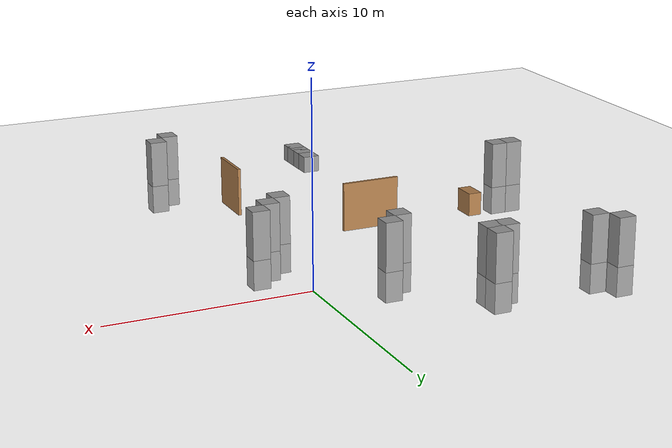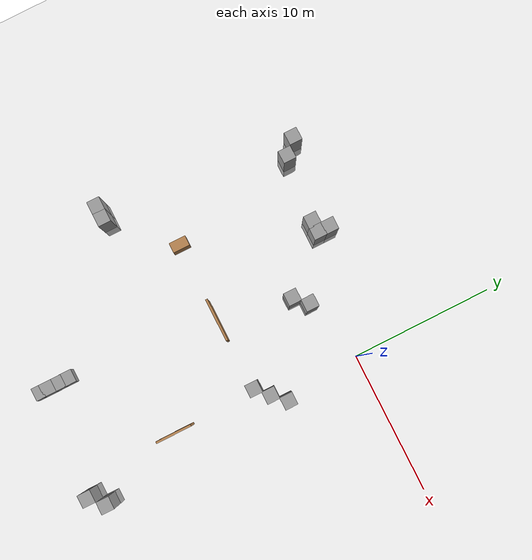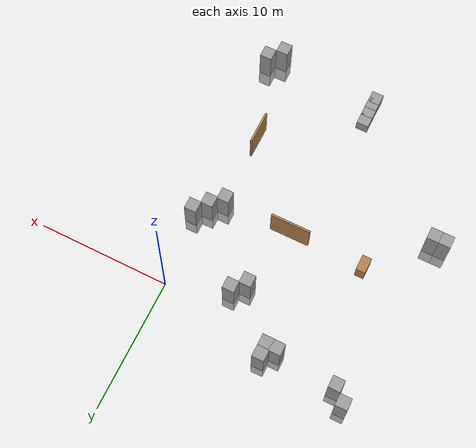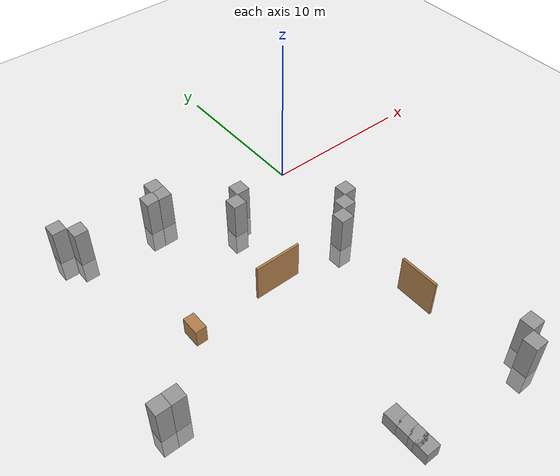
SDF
<sdf version="1.7">
 <world name="default">
  <model name="ground_plane">
   <static>1</static>
   <link name="link">
    <collision name="collision">
     <geometry><plane><normal>0 0 1</normal><size>100 100</size></plane></geometry>
     <surface><friction><ode><mu>100</mu><mu2>50</mu2></ode></friction></surface>
    </collision>
    <visual name="visual">
     <cast_shadows>0</cast_shadows>
     <geometry><plane><normal>0 0 1</normal><size>100 100</size></plane></geometry>
     <material>
      <script><uri>file://media/materials/scripts/gazebo.material</uri><name>Gazebo/Grey</name></script>
     </material>
    </visual>
   </link>
  </model>
  <model name="unit_box_clone">
   <link name="link">
    <inertial>
     <mass>1</mass>
     <inertia>
      <ixx>0.166667</ixx>
      <ixy>0</ixy>
      <ixz>0</ixz>
      <iyy>0.166667</iyy>
      <iyz>0</iyz>
      <izz>0.166667</izz>
     </inertia>
    </inertial>
    <visual name="visual">
     <geometry><box><size>0.9 0.9 0.9</size></box></geometry>
     <material>
      <script><name>Gazebo/Grey</name><uri>file://media/materials/scripts/gazebo.material</uri></script>
      <shader type="pixel"><normal_map>__default__</normal_map></shader>
      <ambient>0.3 0.3 0.3 1</ambient>
      <diffuse>0.7 0.7 0.7 1</diffuse>
      <specular>0.01 0.01 0.01 1</specular>
      <emissive>0 0 0 1</emissive>
     </material>
    </visual>
    <collision name="collision">
     <geometry><box><size>0.9 0.9 0.9</size></box></geometry>
     <surface>
      <friction>
       <ode><mu>1</mu><mu2>1</mu2><fdir1>0 0 0</fdir1><slip1>0</slip1><slip2>0</slip2></ode>
       <torsional>
        <coefficient>1</coefficient>
        <patch_radius>0</patch_radius>
        <surface_radius>0</surface_radius>
        <use_patch_radius>1</use_patch_radius>
        <ode><slip>0</slip></ode>
       </torsional>
      </friction>
      <bounce><restitution_coefficient>0</restitution_coefficient><threshold>1e+06</threshold></bounce>
      <contact>
       <collide_without_contact>0</collide_without_contact>
       <collide_without_contact_bitmask>1</collide_without_contact_bitmask>
       <collide_bitmask>1</collide_bitmask>
       <ode>
        <soft_cfm>0</soft_cfm>
        <soft_erp>0.2</soft_erp>
        <kp>1e+13</kp>
        <kd>1</kd>
        <max_vel>0.01</max_vel>
        <min_depth>0</min_depth>
       </ode>
       <bullet>
        <split_impulse>1</split_impulse>
        <split_impulse_penetration_threshold>-0.01</split_impulse_penetration_threshold>
        <soft_cfm>0</soft_cfm>
        <soft_erp>0.2</soft_erp>
        <kp>1e+13</kp>
        <kd>1</kd>
       </bullet>
      </contact>
     </surface>
    </collision>
   </link>
   <link name="link_clone_0_clone">
    <inertial>
     <mass>1</mass>
     <inertia>
      <ixx>0.166667</ixx>
      <ixy>0</ixy>
      <ixz>0</ixz>
      <iyy>0.166667</iyy>
      <iyz>0</iyz>
      <izz>0.166667</izz>
     </inertia>
    </inertial>
    <pose>0.001814 0.546546 0 0 -0 0</pose>
    <visual name="visual">
     <geometry><box><size>0.9 0.9 0.9</size></box></geometry>
     <material>
      <script><name>Gazebo/Grey</name><uri>file://media/materials/scripts/gazebo.material</uri></script>
      <shader type="pixel"><normal_map>__default__</normal_map></shader>
      <ambient>0.3 0.3 0.3 1</ambient>
      <diffuse>0.7 0.7 0.7 1</diffuse>
      <specular>0.01 0.01 0.01 1</specular>
      <emissive>0 0 0 1</emissive>
     </material>
    </visual>
    <collision name="collision">
     <geometry><box><size>0.9 0.9 0.9</size></box></geometry>
     <surface>
      <friction>
       <ode><mu>1</mu><mu2>1</mu2><fdir1>0 0 0</fdir1><slip1>0</slip1><slip2>0</slip2></ode>
       <torsional>
        <coefficient>1</coefficient>
        <patch_radius>0</patch_radius>
        <surface_radius>0</surface_radius>
        <use_patch_radius>1</use_patch_radius>
        <ode><slip>0</slip></ode>
       </torsional>
      </friction>
      <bounce><restitution_coefficient>0</restitution_coefficient><threshold>1e+06</threshold></bounce>
      <contact>
       <collide_without_contact>0</collide_without_contact>
       <collide_without_contact_bitmask>1</collide_without_contact_bitmask>
       <collide_bitmask>1</collide_bitmask>
       <ode>
        <soft_cfm>0</soft_cfm>
        <soft_erp>0.2</soft_erp>
        <kp>1e+13</kp>
        <kd>1</kd>
        <max_vel>0.01</max_vel>
        <min_depth>0</min_depth>
       </ode>
       <bullet>
        <split_impulse>1</split_impulse>
        <split_impulse_penetration_threshold>-0.01</split_impulse_penetration_threshold>
        <soft_cfm>0</soft_cfm>
        <soft_erp>0.2</soft_erp>
        <kp>1e+13</kp>
        <kd>1</kd>
       </bullet>
      </contact>
     </surface>
    </collision>
   </link>
   <link name="link_clone_0_clone_clone">
    <inertial>
     <mass>1</mass>
     <inertia>
      <ixx>0.166667</ixx>
      <ixy>0</ixy>
      <ixz>0</ixz>
      <iyy>0.166667</iyy>
      <iyz>0</iyz>
      <izz>0.166667</izz>
     </inertia>
    </inertial>
    <pose>0.000695 1.26691 0 0 -0 0</pose>
    <visual name="visual">
     <geometry><box><size>0.9 0.9 0.9</size></box></geometry>
     <material>
      <script><name>Gazebo/Grey</name><uri>file://media/materials/scripts/gazebo.material</uri></script>
      <shader type="pixel"><normal_map>__default__</normal_map></shader>
      <ambient>0.3 0.3 0.3 1</ambient>
      <diffuse>0.7 0.7 0.7 1</diffuse>
      <specular>0.01 0.01 0.01 1</specular>
      <emissive>0 0 0 1</emissive>
     </material>
    </visual>
    <collision name="collision">
     <geometry><box><size>0.9 0.9 0.9</size></box></geometry>
     <surface>
      <friction>
       <ode><mu>1</mu><mu2>1</mu2><fdir1>0 0 0</fdir1><slip1>0</slip1><slip2>0</slip2></ode>
       <torsional>
        <coefficient>1</coefficient>
        <patch_radius>0</patch_radius>
        <surface_radius>0</surface_radius>
        <use_patch_radius>1</use_patch_radius>
        <ode><slip>0</slip></ode>
       </torsional>
      </friction>
      <bounce><restitution_coefficient>0</restitution_coefficient><threshold>1e+06</threshold></bounce>
      <contact>
       <collide_without_contact>0</collide_without_contact>
       <collide_without_contact_bitmask>1</collide_without_contact_bitmask>
       <collide_bitmask>1</collide_bitmask>
       <ode>
        <soft_cfm>0</soft_cfm>
        <soft_erp>0.2</soft_erp>
        <kp>1e+13</kp>
        <kd>1</kd>
        <max_vel>0.01</max_vel>
        <min_depth>0</min_depth>
       </ode>
       <bullet>
        <split_impulse>1</split_impulse>
        <split_impulse_penetration_threshold>-0.01</split_impulse_penetration_threshold>
        <soft_cfm>0</soft_cfm>
        <soft_erp>0.2</soft_erp>
        <kp>1e+13</kp>
        <kd>1</kd>
       </bullet>
      </contact>
     </surface>
    </collision>
   </link>
   <link name="link_clone_0_clone_clone_0">
    <inertial>
     <mass>1</mass>
     <inertia>
      <ixx>0.166667</ixx>
      <ixy>0</ixy>
      <ixz>0</ixz>
      <iyy>0.166667</iyy>
      <iyz>0</iyz>
      <izz>0.166667</izz>
     </inertia>
    </inertial>
    <pose>-9.13666 8.99649 0 0 -0 0</pose>
    <visual name="visual">
     <geometry><box><size>0.9 0.9 4</size></box></geometry>
     <material>
      <script><name>Gazebo/Grey</name><uri>file://media/materials/scripts/gazebo.material</uri></script>
      <shader type="pixel"><normal_map>__default__</normal_map></shader>
      <ambient>0.3 0.3 0.3 1</ambient>
      <diffuse>0.7 0.7 0.7 1</diffuse>
      <specular>0.01 0.01 0.01 1</specular>
      <emissive>0 0 0 1</emissive>
     </material>
    </visual>
    <collision name="collision">
     <geometry><box><size>0.9 0.9 4</size></box></geometry>
     <surface>
      <friction>
       <ode><mu>1</mu><mu2>1</mu2><fdir1>0 0 0</fdir1><slip1>0</slip1><slip2>0</slip2></ode>
       <torsional>
        <coefficient>1</coefficient>
        <patch_radius>0</patch_radius>
        <surface_radius>0</surface_radius>
        <use_patch_radius>1</use_patch_radius>
        <ode><slip>0</slip></ode>
       </torsional>
      </friction>
      <bounce><restitution_coefficient>0</restitution_coefficient><threshold>1e+06</threshold></bounce>
      <contact>
       <collide_without_contact>0</collide_without_contact>
       <collide_without_contact_bitmask>1</collide_without_contact_bitmask>
       <collide_bitmask>1</collide_bitmask>
       <ode>
        <soft_cfm>0</soft_cfm>
        <soft_erp>0.2</soft_erp>
        <kp>1e+13</kp>
        <kd>1</kd>
        <max_vel>0.01</max_vel>
        <min_depth>0</min_depth>
       </ode>
       <bullet>
        <split_impulse>1</split_impulse>
        <split_impulse_penetration_threshold>-0.01</split_impulse_penetration_threshold>
        <soft_cfm>0</soft_cfm>
        <soft_erp>0.2</soft_erp>
        <kp>1e+13</kp>
        <kd>1</kd>
       </bullet>
      </contact>
     </surface>
    </collision>
   </link>
   <link name="link_clone_0_clone_clone_1">
    <inertial>
     <mass>1</mass>
     <inertia>
      <ixx>0.166667</ixx>
      <ixy>0</ixy>
      <ixz>0</ixz>
      <iyy>0.166667</iyy>
      <iyz>0</iyz>
      <izz>0.166667</izz>
     </inertia>
    </inertial>
    <pose>-8.25334 8.99525 0 0 -0 0</pose>
    <visual name="visual">
     <geometry><box><size>0.9 0.9 4</size></box></geometry>
     <material>
      <script><name>Gazebo/Grey</name><uri>file://media/materials/scripts/gazebo.material</uri></script>
      <shader type="pixel"><normal_map>__default__</normal_map></shader>
      <ambient>0.3 0.3 0.3 1</ambient>
      <diffuse>0.7 0.7 0.7 1</diffuse>
      <specular>0.01 0.01 0.01 1</specular>
      <emissive>0 0 0 1</emissive>
     </material>
    </visual>
    <collision name="collision">
     <geometry><box><size>0.9 0.9 4</size></box></geometry>
     <surface>
      <friction>
       <ode><mu>1</mu><mu2>1</mu2><fdir1>0 0 0</fdir1><slip1>0</slip1><slip2>0</slip2></ode>
       <torsional>
        <coefficient>1</coefficient>
        <patch_radius>0</patch_radius>
        <surface_radius>0</surface_radius>
        <use_patch_radius>1</use_patch_radius>
        <ode><slip>0</slip></ode>
       </torsional>
      </friction>
      <bounce><restitution_coefficient>0</restitution_coefficient><threshold>1e+06</threshold></bounce>
      <contact>
       <collide_without_contact>0</collide_without_contact>
       <collide_without_contact_bitmask>1</collide_without_contact_bitmask>
       <collide_bitmask>1</collide_bitmask>
       <ode>
        <soft_cfm>0</soft_cfm>
        <soft_erp>0.2</soft_erp>
        <kp>1e+13</kp>
        <kd>1</kd>
        <max_vel>0.01</max_vel>
        <min_depth>0</min_depth>
       </ode>
       <bullet>
        <split_impulse>1</split_impulse>
        <split_impulse_penetration_threshold>-0.01</split_impulse_penetration_threshold>
        <soft_cfm>0</soft_cfm>
        <soft_erp>0.2</soft_erp>
        <kp>1e+13</kp>
        <kd>1</kd>
       </bullet>
      </contact>
     </surface>
    </collision>
   </link>
   <link name="link_clone_0_clone_clone_3_clone_2_clone_12">
    <inertial>
     <mass>1</mass>
     <inertia>
      <ixx>0.166667</ixx>
      <ixy>0</ixy>
      <ixz>0</ixz>
      <iyy>0.166667</iyy>
      <iyz>0</iyz>
      <izz>0.166667</izz>
     </inertia>
    </inertial>
    <pose>-1.03565 22.0898 0 0 -0 0</pose>
    <visual name="visual">
     <geometry><box><size>0.9 0.9 4</size></box></geometry>
     <material>
      <script><name>Gazebo/Grey</name><uri>file://media/materials/scripts/gazebo.material</uri></script>
      <shader type="pixel"><normal_map>__default__</normal_map></shader>
      <ambient>0.3 0.3 0.3 1</ambient>
      <diffuse>0.7 0.7 0.7 1</diffuse>
      <specular>0.01 0.01 0.01 1</specular>
      <emissive>0 0 0 1</emissive>
     </material>
    </visual>
    <collision name="collision">
     <geometry><box><size>0.9 0.9 4</size></box></geometry>
     <surface>
      <friction>
       <ode><mu>1</mu><mu2>1</mu2><fdir1>0 0 0</fdir1><slip1>0</slip1><slip2>0</slip2></ode>
       <torsional>
        <coefficient>1</coefficient>
        <patch_radius>0</patch_radius>
        <surface_radius>0</surface_radius>
        <use_patch_radius>1</use_patch_radius>
        <ode><slip>0</slip></ode>
       </torsional>
      </friction>
      <bounce><restitution_coefficient>0</restitution_coefficient><threshold>1e+06</threshold></bounce>
      <contact>
       <collide_without_contact>0</collide_without_contact>
       <collide_without_contact_bitmask>1</collide_without_contact_bitmask>
       <collide_bitmask>1</collide_bitmask>
       <ode>
        <soft_cfm>0</soft_cfm>
        <soft_erp>0.2</soft_erp>
        <kp>1e+13</kp>
        <kd>1</kd>
        <max_vel>0.01</max_vel>
        <min_depth>0</min_depth>
       </ode>
       <bullet>
        <split_impulse>1</split_impulse>
        <split_impulse_penetration_threshold>-0.01</split_impulse_penetration_threshold>
        <soft_cfm>0</soft_cfm>
        <soft_erp>0.2</soft_erp>
        <kp>1e+13</kp>
        <kd>1</kd>
       </bullet>
      </contact>
     </surface>
    </collision>
   </link>
   <link name="link_clone_0_clone_clone_3_clone_2_clone_13">
    <inertial>
     <mass>1</mass>
     <inertia>
      <ixx>0.166667</ixx>
      <ixy>0</ixy>
      <ixz>0</ixz>
      <iyy>0.166667</iyy>
      <iyz>0</iyz>
      <izz>0.166667</izz>
     </inertia>
    </inertial>
    <pose>-1.04307 21.2327 0 0 -0 0</pose>
    <visual name="visual">
     <geometry><box><size>0.9 0.9 4</size></box></geometry>
     <material>
      <script><name>Gazebo/Grey</name><uri>file://media/materials/scripts/gazebo.material</uri></script>
      <shader type="pixel"><normal_map>__default__</normal_map></shader>
      <ambient>0.3 0.3 0.3 1</ambient>
      <diffuse>0.7 0.7 0.7 1</diffuse>
      <specular>0.01 0.01 0.01 1</specular>
      <emissive>0 0 0 1</emissive>
     </material>
    </visual>
    <collision name="collision">
     <geometry><box><size>0.9 0.9 4</size></box></geometry>
     <surface>
      <friction>
       <ode><mu>1</mu><mu2>1</mu2><fdir1>0 0 0</fdir1><slip1>0</slip1><slip2>0</slip2></ode>
       <torsional>
        <coefficient>1</coefficient>
        <patch_radius>0</patch_radius>
        <surface_radius>0</surface_radius>
        <use_patch_radius>1</use_patch_radius>
        <ode><slip>0</slip></ode>
       </torsional>
      </friction>
      <bounce><restitution_coefficient>0</restitution_coefficient><threshold>1e+06</threshold></bounce>
      <contact>
       <collide_without_contact>0</collide_without_contact>
       <collide_without_contact_bitmask>1</collide_without_contact_bitmask>
       <collide_bitmask>1</collide_bitmask>
       <ode>
        <soft_cfm>0</soft_cfm>
        <soft_erp>0.2</soft_erp>
        <kp>1e+13</kp>
        <kd>1</kd>
        <max_vel>0.01</max_vel>
        <min_depth>0</min_depth>
       </ode>
       <bullet>
        <split_impulse>1</split_impulse>
        <split_impulse_penetration_threshold>-0.01</split_impulse_penetration_threshold>
        <soft_cfm>0</soft_cfm>
        <soft_erp>0.2</soft_erp>
        <kp>1e+13</kp>
        <kd>1</kd>
       </bullet>
      </contact>
     </surface>
    </collision>
   </link>
   <link name="link_clone_0_clone_clone_3_clone_2_clone_14">
    <inertial>
     <mass>1</mass>
     <inertia>
      <ixx>0.166667</ixx>
      <ixy>0</ixy>
      <ixz>0</ixz>
      <iyy>0.166667</iyy>
      <iyz>0</iyz>
      <izz>0.166667</izz>
     </inertia>
    </inertial>
    <pose>-1.86101 21.2404 0 0 -0 0</pose>
    <visual name="visual">
     <geometry><box><size>0.9 0.9 4</size></box></geometry>
     <material>
      <script><name>Gazebo/Grey</name><uri>file://media/materials/scripts/gazebo.material</uri></script>
      <shader type="pixel"><normal_map>__default__</normal_map></shader>
      <ambient>0.3 0.3 0.3 1</ambient>
      <diffuse>0.7 0.7 0.7 1</diffuse>
      <specular>0.01 0.01 0.01 1</specular>
      <emissive>0 0 0 1</emissive>
     </material>
    </visual>
    <collision name="collision">
     <geometry><box><size>0.9 0.9 4</size></box></geometry>
     <surface>
      <friction>
       <ode><mu>1</mu><mu2>1</mu2><fdir1>0 0 0</fdir1><slip1>0</slip1><slip2>0</slip2></ode>
       <torsional>
        <coefficient>1</coefficient>
        <patch_radius>0</patch_radius>
        <surface_radius>0</surface_radius>
        <use_patch_radius>1</use_patch_radius>
        <ode><slip>0</slip></ode>
       </torsional>
      </friction>
      <bounce><restitution_coefficient>0</restitution_coefficient><threshold>1e+06</threshold></bounce>
      <contact>
       <collide_without_contact>0</collide_without_contact>
       <collide_without_contact_bitmask>1</collide_without_contact_bitmask>
       <collide_bitmask>1</collide_bitmask>
       <ode>
        <soft_cfm>0</soft_cfm>
        <soft_erp>0.2</soft_erp>
        <kp>1e+13</kp>
        <kd>1</kd>
        <max_vel>0.01</max_vel>
        <min_depth>0</min_depth>
       </ode>
       <bullet>
        <split_impulse>1</split_impulse>
        <split_impulse_penetration_threshold>-0.01</split_impulse_penetration_threshold>
        <soft_cfm>0</soft_cfm>
        <soft_erp>0.2</soft_erp>
        <kp>1e+13</kp>
        <kd>1</kd>
       </bullet>
      </contact>
     </surface>
    </collision>
   </link>
   <link name="link_clone_0_clone_clone_3_clone_2_clone_30">
    <inertial>
     <mass>1</mass>
     <inertia>
      <ixx>0.166667</ixx>
      <ixy>0</ixy>
      <ixz>0</ixz>
      <iyy>0.166667</iyy>
      <iyz>0</iyz>
      <izz>0.166667</izz>
     </inertia>
    </inertial>
    <pose>8.60253 0.907256 0 0 -0 0</pose>
    <visual name="visual">
     <geometry><box><size>0.9 0.9 4</size></box></geometry>
     <material>
      <script><name>Gazebo/Grey</name><uri>file://media/materials/scripts/gazebo.material</uri></script>
      <shader type="pixel"><normal_map>__default__</normal_map></shader>
      <ambient>0.3 0.3 0.3 1</ambient>
      <diffuse>0.7 0.7 0.7 1</diffuse>
      <specular>0.01 0.01 0.01 1</specular>
      <emissive>0 0 0 1</emissive>
     </material>
    </visual>
    <collision name="collision">
     <geometry><box><size>0.9 0.9 4</size></box></geometry>
     <surface>
      <friction>
       <ode><mu>1</mu><mu2>1</mu2><fdir1>0 0 0</fdir1><slip1>0</slip1><slip2>0</slip2></ode>
       <torsional>
        <coefficient>1</coefficient>
        <patch_radius>0</patch_radius>
        <surface_radius>0</surface_radius>
        <use_patch_radius>1</use_patch_radius>
        <ode><slip>0</slip></ode>
       </torsional>
      </friction>
      <bounce><restitution_coefficient>0</restitution_coefficient><threshold>1e+06</threshold></bounce>
      <contact>
       <collide_without_contact>0</collide_without_contact>
       <collide_without_contact_bitmask>1</collide_without_contact_bitmask>
       <collide_bitmask>1</collide_bitmask>
       <ode>
        <soft_cfm>0</soft_cfm>
        <soft_erp>0.2</soft_erp>
        <kp>1e+13</kp>
        <kd>1</kd>
        <max_vel>0.01</max_vel>
        <min_depth>0</min_depth>
       </ode>
       <bullet>
        <split_impulse>1</split_impulse>
        <split_impulse_penetration_threshold>-0.01</split_impulse_penetration_threshold>
        <soft_cfm>0</soft_cfm>
        <soft_erp>0.2</soft_erp>
        <kp>1e+13</kp>
        <kd>1</kd>
       </bullet>
      </contact>
     </surface>
    </collision>
   </link>
   <link name="link_clone_0_clone_clone_3_clone_2_clone_31">
    <inertial>
     <mass>1</mass>
     <inertia>
      <ixx>0.166667</ixx>
      <ixy>0</ixy>
      <ixz>0</ixz>
      <iyy>0.166667</iyy>
      <iyz>0</iyz>
      <izz>0.166667</izz>
     </inertia>
    </inertial>
    <pose>7.67945 0.009107 0 0 -0 0</pose>
    <visual name="visual">
     <geometry><box><size>0.9 0.9 4</size></box></geometry>
     <material>
      <script><name>Gazebo/Grey</name><uri>file://media/materials/scripts/gazebo.material</uri></script>
      <shader type="pixel"><normal_map>__default__</normal_map></shader>
      <ambient>0.3 0.3 0.3 1</ambient>
      <diffuse>0.7 0.7 0.7 1</diffuse>
      <specular>0.01 0.01 0.01 1</specular>
      <emissive>0 0 0 1</emissive>
     </material>
    </visual>
    <collision name="collision">
     <geometry><box><size>0.9 0.9 4</size></box></geometry>
     <surface>
      <friction>
       <ode><mu>1</mu><mu2>1</mu2><fdir1>0 0 0</fdir1><slip1>0</slip1><slip2>0</slip2></ode>
       <torsional>
        <coefficient>1</coefficient>
        <patch_radius>0</patch_radius>
        <surface_radius>0</surface_radius>
        <use_patch_radius>1</use_patch_radius>
        <ode><slip>0</slip></ode>
       </torsional>
      </friction>
      <bounce><restitution_coefficient>0</restitution_coefficient><threshold>1e+06</threshold></bounce>
      <contact>
       <collide_without_contact>0</collide_without_contact>
       <collide_without_contact_bitmask>1</collide_without_contact_bitmask>
       <collide_bitmask>1</collide_bitmask>
       <ode>
        <soft_cfm>0</soft_cfm>
        <soft_erp>0.2</soft_erp>
        <kp>1e+13</kp>
        <kd>1</kd>
        <max_vel>0.01</max_vel>
        <min_depth>0</min_depth>
       </ode>
       <bullet>
        <split_impulse>1</split_impulse>
        <split_impulse_penetration_threshold>-0.01</split_impulse_penetration_threshold>
        <soft_cfm>0</soft_cfm>
        <soft_erp>0.2</soft_erp>
        <kp>1e+13</kp>
        <kd>1</kd>
       </bullet>
      </contact>
     </surface>
    </collision>
   </link>
   <link name="link_clone_0_clone_clone_3_clone_2_clone_50">
    <inertial>
     <mass>1</mass>
     <inertia>
      <ixx>0.166667</ixx>
      <ixy>0</ixy>
      <ixz>0</ixz>
      <iyy>0.166667</iyy>
      <iyz>0</iyz>
      <izz>0.166667</izz>
     </inertia>
    </inertial>
    <pose>2.0531 17.7761 0 0 -0 0</pose>
    <visual name="visual">
     <geometry><box><size>0.9 0.9 4</size></box></geometry>
     <material>
      <script><name>Gazebo/Grey</name><uri>file://media/materials/scripts/gazebo.material</uri></script>
      <shader type="pixel"><normal_map>__default__</normal_map></shader>
      <ambient>0.3 0.3 0.3 1</ambient>
      <diffuse>0.7 0.7 0.7 1</diffuse>
      <specular>0.01 0.01 0.01 1</specular>
      <emissive>0 0 0 1</emissive>
     </material>
    </visual>
    <collision name="collision">
     <geometry><box><size>0.9 0.9 4</size></box></geometry>
     <surface>
      <friction>
       <ode><mu>1</mu><mu2>1</mu2><fdir1>0 0 0</fdir1><slip1>0</slip1><slip2>0</slip2></ode>
       <torsional>
        <coefficient>1</coefficient>
        <patch_radius>0</patch_radius>
        <surface_radius>0</surface_radius>
        <use_patch_radius>1</use_patch_radius>
        <ode><slip>0</slip></ode>
       </torsional>
      </friction>
      <bounce><restitution_coefficient>0</restitution_coefficient><threshold>1e+06</threshold></bounce>
      <contact>
       <collide_without_contact>0</collide_without_contact>
       <collide_without_contact_bitmask>1</collide_without_contact_bitmask>
       <collide_bitmask>1</collide_bitmask>
       <ode>
        <soft_cfm>0</soft_cfm>
        <soft_erp>0.2</soft_erp>
        <kp>1e+13</kp>
        <kd>1</kd>
        <max_vel>0.01</max_vel>
        <min_depth>0</min_depth>
       </ode>
       <bullet>
        <split_impulse>1</split_impulse>
        <split_impulse_penetration_threshold>-0.01</split_impulse_penetration_threshold>
        <soft_cfm>0</soft_cfm>
        <soft_erp>0.2</soft_erp>
        <kp>1e+13</kp>
        <kd>1</kd>
       </bullet>
      </contact>
     </surface>
    </collision>
   </link>
   <link name="link_clone_0_clone_clone_3_clone_2_clone_51">
    <inertial>
     <mass>1</mass>
     <inertia>
      <ixx>0.166667</ixx>
      <ixy>0</ixy>
      <ixz>0</ixz>
      <iyy>0.166667</iyy>
      <iyz>0</iyz>
      <izz>0.166667</izz>
     </inertia>
    </inertial>
    <pose>2.91295 18.6319 0 0 -0 0</pose>
    <visual name="visual">
     <geometry><box><size>0.9 0.9 4</size></box></geometry>
     <material>
      <script><name>Gazebo/Grey</name><uri>file://media/materials/scripts/gazebo.material</uri></script>
      <shader type="pixel"><normal_map>__default__</normal_map></shader>
      <ambient>0.3 0.3 0.3 1</ambient>
      <diffuse>0.7 0.7 0.7 1</diffuse>
      <specular>0.01 0.01 0.01 1</specular>
      <emissive>0 0 0 1</emissive>
     </material>
    </visual>
    <collision name="collision">
     <geometry><box><size>0.9 0.9 4</size></box></geometry>
     <surface>
      <friction>
       <ode><mu>1</mu><mu2>1</mu2><fdir1>0 0 0</fdir1><slip1>0</slip1><slip2>0</slip2></ode>
       <torsional>
        <coefficient>1</coefficient>
        <patch_radius>0</patch_radius>
        <surface_radius>0</surface_radius>
        <use_patch_radius>1</use_patch_radius>
        <ode><slip>0</slip></ode>
       </torsional>
      </friction>
      <bounce><restitution_coefficient>0</restitution_coefficient><threshold>1e+06</threshold></bounce>
      <contact>
       <collide_without_contact>0</collide_without_contact>
       <collide_without_contact_bitmask>1</collide_without_contact_bitmask>
       <collide_bitmask>1</collide_bitmask>
       <ode>
        <soft_cfm>0</soft_cfm>
        <soft_erp>0.2</soft_erp>
        <kp>1e+13</kp>
        <kd>1</kd>
        <max_vel>0.01</max_vel>
        <min_depth>0</min_depth>
       </ode>
       <bullet>
        <split_impulse>1</split_impulse>
        <split_impulse_penetration_threshold>-0.01</split_impulse_penetration_threshold>
        <soft_cfm>0</soft_cfm>
        <soft_erp>0.2</soft_erp>
        <kp>1e+13</kp>
        <kd>1</kd>
       </bullet>
      </contact>
     </surface>
    </collision>
   </link>
   <link name="link_clone_0_clone_clone_3_clone_2_clone_54">
    <inertial>
     <mass>1</mass>
     <inertia>
      <ixx>0.166667</ixx>
      <ixy>0</ixy>
      <ixz>0</ixz>
      <iyy>0.166667</iyy>
      <iyz>0</iyz>
      <izz>0.166667</izz>
     </inertia>
    </inertial>
    <pose>6.24208 12.8125 0 0 -0 0</pose>
    <visual name="visual">
     <geometry><box><size>0.9 0.9 4</size></box></geometry>
     <material>
      <script><name>Gazebo/Grey</name><uri>file://media/materials/scripts/gazebo.material</uri></script>
      <shader type="pixel"><normal_map>__default__</normal_map></shader>
      <ambient>0.3 0.3 0.3 1</ambient>
      <diffuse>0.7 0.7 0.7 1</diffuse>
      <specular>0.01 0.01 0.01 1</specular>
      <emissive>0 0 0 1</emissive>
     </material>
    </visual>
    <collision name="collision">
     <geometry><box><size>0.9 0.9 4</size></box></geometry>
     <surface>
      <friction>
       <ode><mu>1</mu><mu2>1</mu2><fdir1>0 0 0</fdir1><slip1>0</slip1><slip2>0</slip2></ode>
       <torsional>
        <coefficient>1</coefficient>
        <patch_radius>0</patch_radius>
        <surface_radius>0</surface_radius>
        <use_patch_radius>1</use_patch_radius>
        <ode><slip>0</slip></ode>
       </torsional>
      </friction>
      <bounce><restitution_coefficient>0</restitution_coefficient><threshold>1e+06</threshold></bounce>
      <contact>
       <collide_without_contact>0</collide_without_contact>
       <collide_without_contact_bitmask>1</collide_without_contact_bitmask>
       <collide_bitmask>1</collide_bitmask>
       <ode>
        <soft_cfm>0</soft_cfm>
        <soft_erp>0.2</soft_erp>
        <kp>1e+13</kp>
        <kd>1</kd>
        <max_vel>0.01</max_vel>
        <min_depth>0</min_depth>
       </ode>
       <bullet>
        <split_impulse>1</split_impulse>
        <split_impulse_penetration_threshold>-0.01</split_impulse_penetration_threshold>
        <soft_cfm>0</soft_cfm>
        <soft_erp>0.2</soft_erp>
        <kp>1e+13</kp>
        <kd>1</kd>
       </bullet>
      </contact>
     </surface>
    </collision>
   </link>
   <link name="link_clone_0_clone_clone_3_clone_2_clone_55">
    <inertial>
     <mass>1</mass>
     <inertia>
      <ixx>0.166667</ixx>
      <ixy>0</ixy>
      <ixz>0</ixz>
      <iyy>0.166667</iyy>
      <iyz>0</iyz>
      <izz>0.166667</izz>
     </inertia>
    </inertial>
    <pose>7.11895 13.6193 0 0 -0 0</pose>
    <visual name="visual">
     <geometry><box><size>0.9 0.9 4</size></box></geometry>
     <material>
      <script><name>Gazebo/Grey</name><uri>file://media/materials/scripts/gazebo.material</uri></script>
      <shader type="pixel"><normal_map>__default__</normal_map></shader>
      <ambient>0.3 0.3 0.3 1</ambient>
      <diffuse>0.7 0.7 0.7 1</diffuse>
      <specular>0.01 0.01 0.01 1</specular>
      <emissive>0 0 0 1</emissive>
     </material>
    </visual>
    <collision name="collision">
     <geometry><box><size>0.9 0.9 4</size></box></geometry>
     <surface>
      <friction>
       <ode><mu>1</mu><mu2>1</mu2><fdir1>0 0 0</fdir1><slip1>0</slip1><slip2>0</slip2></ode>
       <torsional>
        <coefficient>1</coefficient>
        <patch_radius>0</patch_radius>
        <surface_radius>0</surface_radius>
        <use_patch_radius>1</use_patch_radius>
        <ode><slip>0</slip></ode>
       </torsional>
      </friction>
      <bounce><restitution_coefficient>0</restitution_coefficient><threshold>1e+06</threshold></bounce>
      <contact>
       <collide_without_contact>0</collide_without_contact>
       <collide_without_contact_bitmask>1</collide_without_contact_bitmask>
       <collide_bitmask>1</collide_bitmask>
       <ode>
        <soft_cfm>0</soft_cfm>
        <soft_erp>0.2</soft_erp>
        <kp>1e+13</kp>
        <kd>1</kd>
        <max_vel>0.01</max_vel>
        <min_depth>0</min_depth>
       </ode>
       <bullet>
        <split_impulse>1</split_impulse>
        <split_impulse_penetration_threshold>-0.01</split_impulse_penetration_threshold>
        <soft_cfm>0</soft_cfm>
        <soft_erp>0.2</soft_erp>
        <kp>1e+13</kp>
        <kd>1</kd>
       </bullet>
      </contact>
     </surface>
    </collision>
   </link>
   <link name="link_clone_0_clone_clone_3_clone_2_clone_56">
    <inertial>
     <mass>1</mass>
     <inertia>
      <ixx>0.166667</ixx>
      <ixy>0</ixy>
      <ixz>0</ixz>
      <iyy>0.166667</iyy>
      <iyz>0</iyz>
      <izz>0.166667</izz>
     </inertia>
    </inertial>
    <pose>7.97703 14.495 0 0 -0 0</pose>
    <visual name="visual">
     <geometry><box><size>0.9 0.9 4</size></box></geometry>
     <material>
      <script><name>Gazebo/Grey</name><uri>file://media/materials/scripts/gazebo.material</uri></script>
      <shader type="pixel"><normal_map>__default__</normal_map></shader>
      <ambient>0.3 0.3 0.3 1</ambient>
      <diffuse>0.7 0.7 0.7 1</diffuse>
      <specular>0.01 0.01 0.01 1</specular>
      <emissive>0 0 0 1</emissive>
     </material>
    </visual>
    <collision name="collision">
     <geometry><box><size>0.9 0.9 4</size></box></geometry>
     <surface>
      <friction>
       <ode><mu>1</mu><mu2>1</mu2><fdir1>0 0 0</fdir1><slip1>0</slip1><slip2>0</slip2></ode>
       <torsional>
        <coefficient>1</coefficient>
        <patch_radius>0</patch_radius>
        <surface_radius>0</surface_radius>
        <use_patch_radius>1</use_patch_radius>
        <ode><slip>0</slip></ode>
       </torsional>
      </friction>
      <bounce><restitution_coefficient>0</restitution_coefficient><threshold>1e+06</threshold></bounce>
      <contact>
       <collide_without_contact>0</collide_without_contact>
       <collide_without_contact_bitmask>1</collide_without_contact_bitmask>
       <collide_bitmask>1</collide_bitmask>
       <ode>
        <soft_cfm>0</soft_cfm>
        <soft_erp>0.2</soft_erp>
        <kp>1e+13</kp>
        <kd>1</kd>
        <max_vel>0.01</max_vel>
        <min_depth>0</min_depth>
       </ode>
       <bullet>
        <split_impulse>1</split_impulse>
        <split_impulse_penetration_threshold>-0.01</split_impulse_penetration_threshold>
        <soft_cfm>0</soft_cfm>
        <soft_erp>0.2</soft_erp>
        <kp>1e+13</kp>
        <kd>1</kd>
       </bullet>
      </contact>
     </surface>
    </collision>
   </link>
   <link name="link_clone_0_clone_clone_3_clone_2_clone_7">
    <inertial>
     <mass>1</mass>
     <inertia>
      <ixx>0.166667</ixx>
      <ixy>0</ixy>
      <ixz>0</ixz>
      <iyy>0.166667</iyy>
      <iyz>0</iyz>
      <izz>0.166667</izz>
     </inertia>
    </inertial>
    <pose>-7.39653 22.6366 0 0 -0 0</pose>
    <visual name="visual">
     <geometry><box><size>0.9 0.9 4</size></box></geometry>
     <material>
      <script><name>Gazebo/Grey</name><uri>file://media/materials/scripts/gazebo.material</uri></script>
      <shader type="pixel"><normal_map>__default__</normal_map></shader>
      <ambient>0.3 0.3 0.3 1</ambient>
      <diffuse>0.7 0.7 0.7 1</diffuse>
      <specular>0.01 0.01 0.01 1</specular>
      <emissive>0 0 0 1</emissive>
     </material>
    </visual>
    <collision name="collision">
     <geometry><box><size>0.9 0.9 4</size></box></geometry>
     <surface>
      <friction>
       <ode><mu>1</mu><mu2>1</mu2><fdir1>0 0 0</fdir1><slip1>0</slip1><slip2>0</slip2></ode>
       <torsional>
        <coefficient>1</coefficient>
        <patch_radius>0</patch_radius>
        <surface_radius>0</surface_radius>
        <use_patch_radius>1</use_patch_radius>
        <ode><slip>0</slip></ode>
       </torsional>
      </friction>
      <bounce><restitution_coefficient>0</restitution_coefficient><threshold>1e+06</threshold></bounce>
      <contact>
       <collide_without_contact>0</collide_without_contact>
       <collide_without_contact_bitmask>1</collide_without_contact_bitmask>
       <collide_bitmask>1</collide_bitmask>
       <ode>
        <soft_cfm>0</soft_cfm>
        <soft_erp>0.2</soft_erp>
        <kp>1e+13</kp>
        <kd>1</kd>
        <max_vel>0.01</max_vel>
        <min_depth>0</min_depth>
       </ode>
       <bullet>
        <split_impulse>1</split_impulse>
        <split_impulse_penetration_threshold>-0.01</split_impulse_penetration_threshold>
        <soft_cfm>0</soft_cfm>
        <soft_erp>0.2</soft_erp>
        <kp>1e+13</kp>
        <kd>1</kd>
       </bullet>
      </contact>
     </surface>
    </collision>
   </link>
   <link name="link_clone_0_clone_clone_3_clone_2_clone_8">
    <inertial>
     <mass>1</mass>
     <inertia>
      <ixx>0.166667</ixx>
      <ixy>0</ixy>
      <ixz>0</ixz>
      <iyy>0.166667</iyy>
      <iyz>0</iyz>
      <izz>0.166667</izz>
     </inertia>
    </inertial>
    <pose>-6.47961 21.7241 0 0 -0 0</pose>
    <visual name="visual">
     <geometry><box><size>0.9 0.9 4</size></box></geometry>
     <material>
      <script><name>Gazebo/Grey</name><uri>file://media/materials/scripts/gazebo.material</uri></script>
      <shader type="pixel"><normal_map>__default__</normal_map></shader>
      <ambient>0.3 0.3 0.3 1</ambient>
      <diffuse>0.7 0.7 0.7 1</diffuse>
      <specular>0.01 0.01 0.01 1</specular>
      <emissive>0 0 0 1</emissive>
     </material>
    </visual>
    <collision name="collision">
     <geometry><box><size>0.9 0.9 4</size></box></geometry>
     <surface>
      <friction>
       <ode><mu>1</mu><mu2>1</mu2><fdir1>0 0 0</fdir1><slip1>0</slip1><slip2>0</slip2></ode>
       <torsional>
        <coefficient>1</coefficient>
        <patch_radius>0</patch_radius>
        <surface_radius>0</surface_radius>
        <use_patch_radius>1</use_patch_radius>
        <ode><slip>0</slip></ode>
       </torsional>
      </friction>
      <bounce><restitution_coefficient>0</restitution_coefficient><threshold>1e+06</threshold></bounce>
      <contact>
       <collide_without_contact>0</collide_without_contact>
       <collide_without_contact_bitmask>1</collide_without_contact_bitmask>
       <collide_bitmask>1</collide_bitmask>
       <ode>
        <soft_cfm>0</soft_cfm>
        <soft_erp>0.2</soft_erp>
        <kp>1e+13</kp>
        <kd>1</kd>
        <max_vel>0.01</max_vel>
        <min_depth>0</min_depth>
       </ode>
       <bullet>
        <split_impulse>1</split_impulse>
        <split_impulse_penetration_threshold>-0.01</split_impulse_penetration_threshold>
        <soft_cfm>0</soft_cfm>
        <soft_erp>0.2</soft_erp>
        <kp>1e+13</kp>
        <kd>1</kd>
       </bullet>
      </contact>
     </surface>
    </collision>
   </link>
   <link name="link_clone_clone">
    <inertial>
     <mass>1</mass>
     <inertia>
      <ixx>0.166667</ixx>
      <ixy>0</ixy>
      <ixz>0</ixz>
      <iyy>0.166667</iyy>
      <iyz>0</iyz>
      <izz>0.166667</izz>
     </inertia>
    </inertial>
    <pose>-0.004595 2.04241 0 0 -0 0</pose>
    <visual name="visual">
     <geometry><box><size>0.9 0.9 0.9</size></box></geometry>
     <material>
      <script><name>Gazebo/Grey</name><uri>file://media/materials/scripts/gazebo.material</uri></script>
      <shader type="pixel"><normal_map>__default__</normal_map></shader>
      <ambient>0.3 0.3 0.3 1</ambient>
      <diffuse>0.7 0.7 0.7 1</diffuse>
      <specular>0.01 0.01 0.01 1</specular>
      <emissive>0 0 0 1</emissive>
     </material>
    </visual>
    <collision name="collision">
     <geometry><box><size>0.9 0.9 0.9</size></box></geometry>
     <surface>
      <friction>
       <ode><mu>1</mu><mu2>1</mu2><fdir1>0 0 0</fdir1><slip1>0</slip1><slip2>0</slip2></ode>
       <torsional>
        <coefficient>1</coefficient>
        <patch_radius>0</patch_radius>
        <surface_radius>0</surface_radius>
        <use_patch_radius>1</use_patch_radius>
        <ode><slip>0</slip></ode>
       </torsional>
      </friction>
      <bounce><restitution_coefficient>0</restitution_coefficient><threshold>1e+06</threshold></bounce>
      <contact>
       <collide_without_contact>0</collide_without_contact>
       <collide_without_contact_bitmask>1</collide_without_contact_bitmask>
       <collide_bitmask>1</collide_bitmask>
       <ode>
        <soft_cfm>0</soft_cfm>
        <soft_erp>0.2</soft_erp>
        <kp>1e+13</kp>
        <kd>1</kd>
        <max_vel>0.01</max_vel>
        <min_depth>0</min_depth>
       </ode>
       <bullet>
        <split_impulse>1</split_impulse>
        <split_impulse_penetration_threshold>-0.01</split_impulse_penetration_threshold>
        <soft_cfm>0</soft_cfm>
        <soft_erp>0.2</soft_erp>
        <kp>1e+13</kp>
        <kd>1</kd>
       </bullet>
      </contact>
     </surface>
    </collision>
   </link>
   <static>0</static>
   <pose>-7.42908 -19.9148 0.45 0 -0 0.00027</pose>
  </model>
  <model name="unit_box_0_clone_clone_clone">
   <link name="link">
    <inertial>
     <mass>1</mass>
     <inertia>
      <ixx>0.166667</ixx>
      <ixy>0</ixy>
      <ixz>0</ixz>
      <iyy>0.166667</iyy>
      <iyz>0</iyz>
      <izz>0.166667</izz>
     </inertia>
    </inertial>
    <visual name="visual">
     <geometry><box><size>0.7 1.2 1.2</size></box></geometry>
     <material>
      <script><uri>file://media/materials/scripts/gazebo.material</uri><name>Gazebo/Wood</name></script>
      <shader type="pixel"><normal_map>__default__</normal_map></shader>
      <ambient>1 1 1 1</ambient>
      <diffuse>0.7 0.7 0.7 1</diffuse>
      <specular>0.01 0.01 0.01 1</specular>
      <emissive>0 0 0 1</emissive>
     </material>
    </visual>
    <collision name="collision">
     <geometry><box><size>0.7 1.2 1.2</size></box></geometry>
     <surface>
      <friction>
       <ode><mu>1</mu><mu2>1</mu2><fdir1>0 0 0</fdir1><slip1>0</slip1><slip2>0</slip2></ode>
       <torsional>
        <coefficient>1</coefficient>
        <patch_radius>0</patch_radius>
        <surface_radius>0</surface_radius>
        <use_patch_radius>1</use_patch_radius>
        <ode><slip>0</slip></ode>
       </torsional>
      </friction>
      <bounce><restitution_coefficient>0</restitution_coefficient><threshold>1e+06</threshold></bounce>
      <contact>
       <collide_without_contact>0</collide_without_contact>
       <collide_without_contact_bitmask>1</collide_without_contact_bitmask>
       <collide_bitmask>1</collide_bitmask>
       <ode>
        <soft_cfm>0</soft_cfm>
        <soft_erp>0.2</soft_erp>
        <kp>1e+13</kp>
        <kd>1</kd>
        <max_vel>0.01</max_vel>
        <min_depth>0</min_depth>
       </ode>
       <bullet>
        <split_impulse>1</split_impulse>
        <split_impulse_penetration_threshold>-0.01</split_impulse_penetration_threshold>
        <soft_cfm>0</soft_cfm>
        <soft_erp>0.2</soft_erp>
        <kp>1e+13</kp>
        <kd>1</kd>
       </bullet>
      </contact>
     </surface>
    </collision>
   </link>
   <static>0</static>
   <pose>-12.0342 -7.20824 0.599995 8e-06 -0 0.000351</pose>
  </model>
  <model name="Untitled_0_clone_1_clone_clone_clone">
   <link name="Wall_7_clone_clone">
    <pose>-0.225163 -6.29267 0 0 -0 0</pose>
    <inertial>
     <mass>1</mass>
     <inertia><ixx>1</ixx><ixy>0</ixy><ixz>0</ixz><iyy>1</iyy><iyz>0</iyz><izz>1</izz></inertia>
    </inertial>
    <visual name="Wall_7_Visual">
     <pose>0 0 1.25 0 -0 0</pose>
     <geometry><box><size>3 0.15 2.5</size></box></geometry>
     <material>
      <script><uri>file://media/materials/scripts/gazebo.material</uri><name>Gazebo/Wood</name></script>
      <ambient>1 1 1 1</ambient>
      <shader type="pixel"><normal_map>__default__</normal_map></shader>
      <diffuse>1 1 1 1</diffuse>
      <specular>0.2 0.2 0.2 1</specular>
      <emissive>0 0 0 1</emissive>
     </material>
     <meta><layer>0</layer></meta>
    </visual>
    <collision name="Wall_7_Collision">
     <pose>0 0 1.25 0 -0 0</pose>
     <geometry><box><size>3 0.15 2.5</size></box></geometry>
     <surface>
      <friction>
       <ode><mu>1</mu><mu2>1</mu2><fdir1>0 0 0</fdir1><slip1>0</slip1><slip2>0</slip2></ode>
       <torsional>
        <coefficient>1</coefficient>
        <patch_radius>0</patch_radius>
        <surface_radius>0</surface_radius>
        <use_patch_radius>1</use_patch_radius>
        <ode><slip>0</slip></ode>
       </torsional>
      </friction>
      <bounce><restitution_coefficient>0</restitution_coefficient><threshold>1e+06</threshold></bounce>
      <contact>
       <collide_without_contact>0</collide_without_contact>
       <collide_without_contact_bitmask>1</collide_without_contact_bitmask>
       <collide_bitmask>1</collide_bitmask>
       <ode>
        <soft_cfm>0</soft_cfm>
        <soft_erp>0.2</soft_erp>
        <kp>1e+13</kp>
        <kd>1</kd>
        <max_vel>0.01</max_vel>
        <min_depth>0</min_depth>
       </ode>
       <bullet>
        <split_impulse>1</split_impulse>
        <split_impulse_penetration_threshold>-0.01</split_impulse_penetration_threshold>
        <soft_cfm>0</soft_cfm>
        <soft_erp>0.2</soft_erp>
        <kp>1e+13</kp>
        <kd>1</kd>
       </bullet>
      </contact>
     </surface>
    </collision>
   </link>
   <static>1</static>
   <pose>-6.05534 -0.91975 0 0 -0 0</pose>
  </model>
  <model name="Untitled_0_clone_clone_0_clone">
   <link name="Wall_7_clone_clone_clone">
    <pose>-2.0846 -3.67298 0 0 -0 0</pose>
    <inertial>
     <mass>1</mass>
     <inertia><ixx>1</ixx><ixy>0</ixy><ixz>0</ixz><iyy>1</iyy><iyz>0</iyz><izz>1</izz></inertia>
    </inertial>
    <visual name="Wall_7_Visual">
     <pose>0 0 1.25 0 -0 1.5707</pose>
     <geometry><box><size>2.5 0.15 2.5</size></box></geometry>
     <material>
      <script><uri>file://media/materials/scripts/gazebo.material</uri><name>Gazebo/Wood</name></script>
      <ambient>1 1 1 1</ambient>
      <shader type="pixel"><normal_map>__default__</normal_map></shader>
      <diffuse>1 1 1 1</diffuse>
      <specular>0.2 0.2 0.2 1</specular>
      <emissive>0 0 0 1</emissive>
     </material>
     <meta><layer>0</layer></meta>
    </visual>
    <collision name="Wall_7_Collision">
     <pose>0 0 1.25 0 -0 1.57079</pose>
     <geometry><box><size>2.5 0.15 2.5</size></box></geometry>
     <surface>
      <friction>
       <ode><mu>1</mu><mu2>1</mu2><fdir1>0 0 0</fdir1><slip1>0</slip1><slip2>0</slip2></ode>
       <torsional>
        <coefficient>1</coefficient>
        <patch_radius>0</patch_radius>
        <surface_radius>0</surface_radius>
        <use_patch_radius>1</use_patch_radius>
        <ode><slip>0</slip></ode>
       </torsional>
      </friction>
      <bounce><restitution_coefficient>0</restitution_coefficient><threshold>1e+06</threshold></bounce>
      <contact>
       <collide_without_contact>0</collide_without_contact>
       <collide_without_contact_bitmask>1</collide_without_contact_bitmask>
       <collide_bitmask>1</collide_bitmask>
       <ode>
        <soft_cfm>0</soft_cfm>
        <soft_erp>0.2</soft_erp>
        <kp>1e+13</kp>
        <kd>1</kd>
        <max_vel>0.01</max_vel>
        <min_depth>0</min_depth>
       </ode>
       <bullet>
        <split_impulse>1</split_impulse>
        <split_impulse_penetration_threshold>-0.01</split_impulse_penetration_threshold>
        <soft_cfm>0</soft_cfm>
        <soft_erp>0.2</soft_erp>
        <kp>1e+13</kp>
        <kd>1</kd>
       </bullet>
      </contact>
     </surface>
    </collision>
   </link>
   <static>1</static>
   <pose>1.1438 -9.35318 0 0 -0 0</pose>
  </model>
 </world>
</sdf>
